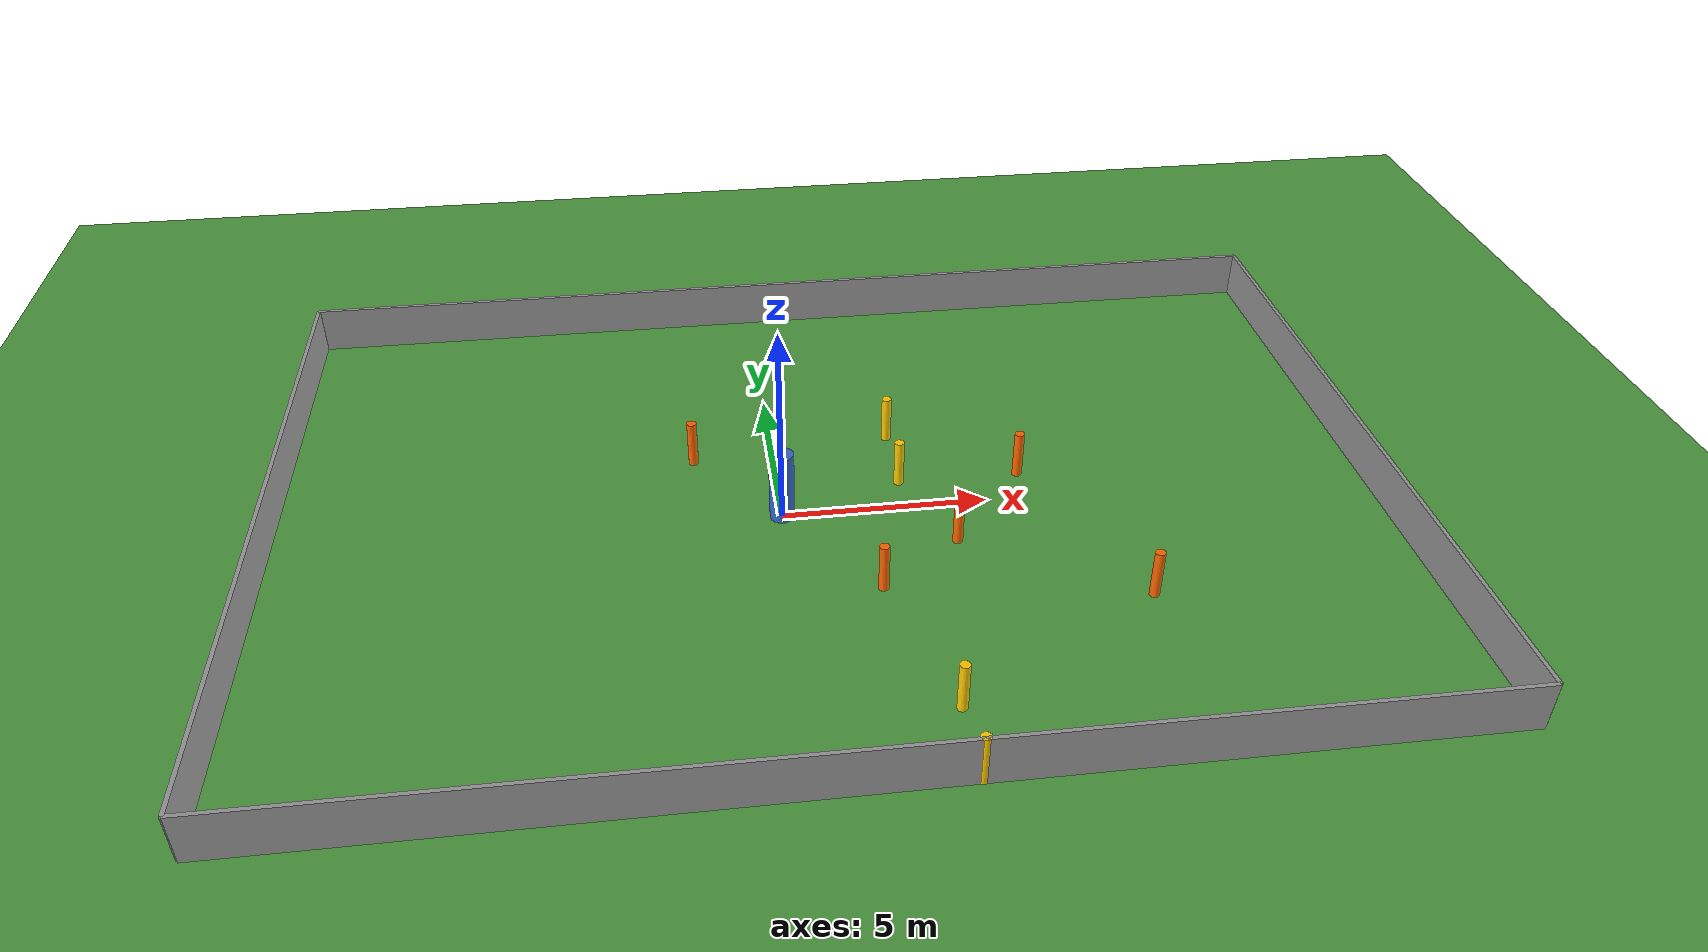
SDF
<?xml version="1.0"?>
<sdf version="1.6">
  <world name="sweep_course">

    <!-- Physics -->
    <physics type="ode">
      <real_time_update_rate>1000</real_time_update_rate>
      <max_step_size>0.002</max_step_size>
      <real_time_factor>0.0</real_time_factor>
      <ode>
        <solver>
          <type>quick</type>
          <iters>50</iters>
          <sor>1.3</sor>
        </solver>
      </ode>
    </physics>

    <!-- Sun light -->
    <light name="sun" type="directional">
      <cast_shadows>true</cast_shadows>
      <pose>0 0 10 0 0 0</pose>
      <diffuse>0.8 0.8 0.8 1</diffuse>
      <specular>0.2 0.2 0.2 1</specular>
      <direction>-0.5 0.1 -0.9</direction>
    </light>

    <!-- Ground plane -->
    <model name="ground_plane">
      <static>true</static>
      <link name="link">
        <collision name="collision">
          <geometry><plane><normal>0 0 1</normal><size>60 40</size></plane></geometry>
          <surface><friction><ode><mu>1</mu><mu2>1</mu2></ode></friction></surface>
        </collision>
        <visual name="visual">
          <geometry><plane><normal>0 0 1</normal><size>60 40</size></plane></geometry>
          <material><script><uri>file://media/materials/scripts/gazebo.material</uri><name>Gazebo/Grass</name></script></material>
        </visual>
      </link>
    </model>

    <!-- ===================== BOUNDARY WALLS ===================== -->
    <!-- Area: x=-12~14.5, y=-9~9.5, wall height=1.2m, thickness=0.1m -->
    <!-- Laser is at z=0.975m, walls must be taller than that -->

    <!-- South wall (y=-9) -->
    <model name="wall_south">
      <static>true</static>
      <pose>1.25 -9.05 0.6 0 0 0</pose>
      <link name="link">
        <collision name="col"><geometry><box><size>26.6 0.1 1.2</size></box></geometry></collision>
        <visual name="vis"><geometry><box><size>26.6 0.1 1.2</size></box></geometry>
          <material><ambient>0.6 0.6 0.6 1</ambient></material></visual>
      </link>
    </model>

    <!-- North wall (y=9.5) -->
    <model name="wall_north">
      <static>true</static>
      <pose>1.25 9.55 0.6 0 0 0</pose>
      <link name="link">
        <collision name="col"><geometry><box><size>26.6 0.1 1.2</size></box></geometry></collision>
        <visual name="vis"><geometry><box><size>26.6 0.1 1.2</size></box></geometry>
          <material><ambient>0.6 0.6 0.6 1</ambient></material></visual>
      </link>
    </model>

    <!-- West wall (x=-12) -->
    <model name="wall_west">
      <static>true</static>
      <pose>-12.05 0.25 0.6 0 0 0</pose>
      <link name="link">
        <collision name="col"><geometry><box><size>0.1 18.6 1.2</size></box></geometry></collision>
        <visual name="vis"><geometry><box><size>0.1 18.6 1.2</size></box></geometry>
          <material><ambient>0.6 0.6 0.6 1</ambient></material></visual>
      </link>
    </model>

    <!-- East wall (x=14.5) -->
    <model name="wall_east">
      <static>true</static>
      <pose>14.55 0.25 0.6 0 0 0</pose>
      <link name="link">
        <collision name="col"><geometry><box><size>0.1 18.6 1.2</size></box></geometry></collision>
        <visual name="vis"><geometry><box><size>0.1 18.6 1.2</size></box></geometry>
          <material><ambient>0.6 0.6 0.6 1</ambient></material></visual>
      </link>
    </model>

    <!-- ===================== STATIC OBSTACLES (cones) ===================== -->
    <!-- Each cone: cylinder r=0.12, h=1.2 (taller than laser at z=0.975m), orange -->

    <!-- Cone cluster 1: obstacle avoidance zone ~x=2, y=-3..3 -->
    <model name="cone_1"><static>true</static><pose>2.0 -3.0 0.6 0 0 0</pose>
      <link name="link">
        <collision name="col"><geometry><cylinder><radius>0.12</radius><length>1.2</length></cylinder></geometry></collision>
        <visual name="vis"><geometry><cylinder><radius>0.12</radius><length>1.2</length></cylinder></geometry>
          <material><ambient>1.0 0.4 0.0 1</ambient></material></visual>
      </link>
    </model>

    <model name="cone_2"><static>true</static><pose>4.0 -1.5 0.6 0 0 0</pose>
      <link name="link">
        <collision name="col"><geometry><cylinder><radius>0.12</radius><length>1.2</length></cylinder></geometry></collision>
        <visual name="vis"><geometry><cylinder><radius>0.12</radius><length>1.2</length></cylinder></geometry>
          <material><ambient>1.0 0.4 0.0 1</ambient></material></visual>
      </link>
    </model>

    <model name="cone_3"><static>true</static><pose>6.0 1.0 0.6 0 0 0</pose>
      <link name="link">
        <collision name="col"><geometry><cylinder><radius>0.12</radius><length>1.2</length></cylinder></geometry></collision>
        <visual name="vis"><geometry><cylinder><radius>0.12</radius><length>1.2</length></cylinder></geometry>
          <material><ambient>1.0 0.4 0.0 1</ambient></material></visual>
      </link>
    </model>

    <model name="cone_4"><static>true</static><pose>-2.0 2.5 0.6 0 0 0</pose>
      <link name="link">
        <collision name="col"><geometry><cylinder><radius>0.12</radius><length>1.2</length></cylinder></geometry></collision>
        <visual name="vis"><geometry><cylinder><radius>0.12</radius><length>1.2</length></cylinder></geometry>
          <material><ambient>1.0 0.4 0.0 1</ambient></material></visual>
      </link>
    </model>

    <model name="cone_5"><static>true</static><pose>8.0 -4.0 0.6 0 0 0</pose>
      <link name="link">
        <collision name="col"><geometry><cylinder><radius>0.12</radius><length>1.2</length></cylinder></geometry></collision>
        <visual name="vis"><geometry><cylinder><radius>0.12</radius><length>1.2</length></cylinder></geometry>
          <material><ambient>1.0 0.4 0.0 1</ambient></material></visual>
      </link>
    </model>

    <!-- ===================== NARROW GATE 1 (y=-8 area, x=3) ===================== -->
    <!-- Gate width = 2.0m, cone pair on each side of robot path -->
    <model name="gate1_L"><static>true</static><pose>3.0 -7.0 0.6 0 0 0</pose>
      <link name="link">
        <collision name="col"><geometry><cylinder><radius>0.12</radius><length>1.2</length></cylinder></geometry></collision>
        <visual name="vis"><geometry><cylinder><radius>0.12</radius><length>1.2</length></cylinder></geometry>
          <material><ambient>1.0 0.8 0.0 1</ambient></material></visual>
      </link>
    </model>
    <model name="gate1_R"><static>true</static><pose>3.0 -9.0 0.6 0 0 0</pose>
      <link name="link">
        <collision name="col"><geometry><cylinder><radius>0.12</radius><length>1.2</length></cylinder></geometry></collision>
        <visual name="vis"><geometry><cylinder><radius>0.12</radius><length>1.2</length></cylinder></geometry>
          <material><ambient>1.0 0.8 0.0 1</ambient></material></visual>
      </link>
    </model>

    <!-- ===================== NARROW GATE 2 (y=2 area, x=3) ===================== -->
    <model name="gate2_L"><static>true</static><pose>3.0 3.0 0.6 0 0 0</pose>
      <link name="link">
        <collision name="col"><geometry><cylinder><radius>0.12</radius><length>1.2</length></cylinder></geometry></collision>
        <visual name="vis"><geometry><cylinder><radius>0.12</radius><length>1.2</length></cylinder></geometry>
          <material><ambient>1.0 0.8 0.0 1</ambient></material></visual>
      </link>
    </model>
    <model name="gate2_R"><static>true</static><pose>3.0 1.0 0.6 0 0 0</pose>
      <link name="link">
        <collision name="col"><geometry><cylinder><radius>0.12</radius><length>1.2</length></cylinder></geometry></collision>
        <visual name="vis"><geometry><cylinder><radius>0.12</radius><length>1.2</length></cylinder></geometry>
          <material><ambient>1.0 0.8 0.0 1</ambient></material></visual>
      </link>
    </model>

    <!-- ===================== DYNAMIC PEDESTRIAN ===================== -->
    <model name="pedestrian">
      <pose>0.0 0.0 0.9 0 0 0</pose>
      <link name="link">
        <inertial><mass>70.0</mass><inertia><ixx>5</ixx><iyy>5</iyy><izz>2</izz><ixy>0</ixy><ixz>0</ixz><iyz>0</iyz></inertia></inertial>
        <collision name="col">
          <geometry><cylinder><radius>0.3</radius><length>1.8</length></cylinder></geometry>
        </collision>
        <visual name="vis">
          <geometry><cylinder><radius>0.3</radius><length>1.8</length></cylinder></geometry>
          <material><ambient>0.2 0.4 0.8 1</ambient></material>
        </visual>
      </link>
    </model>

  </world>
</sdf>
